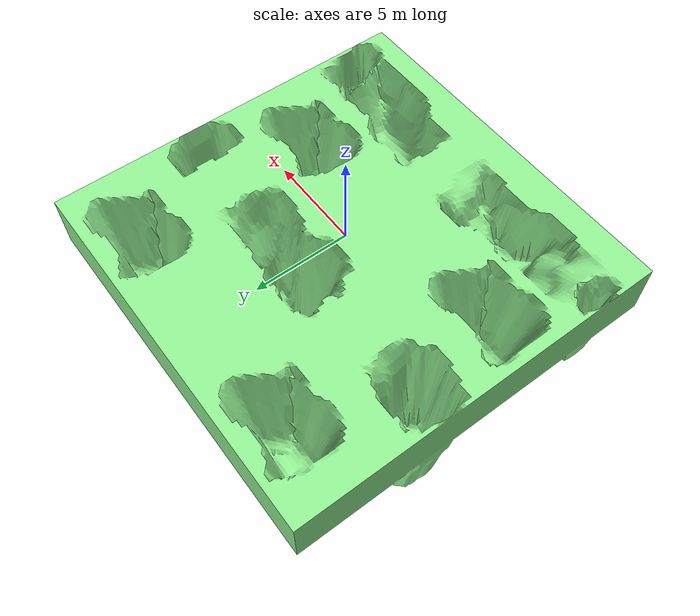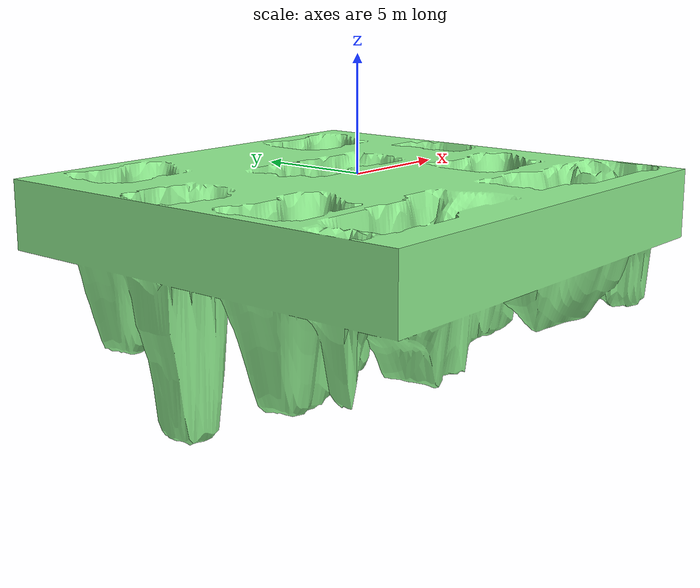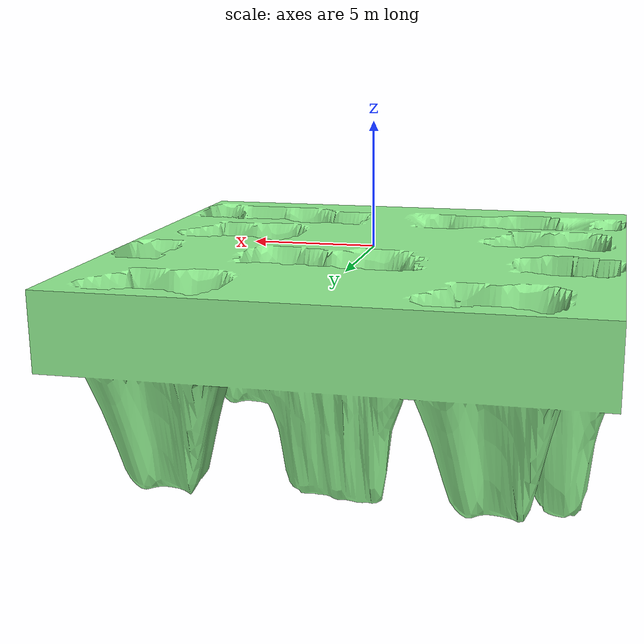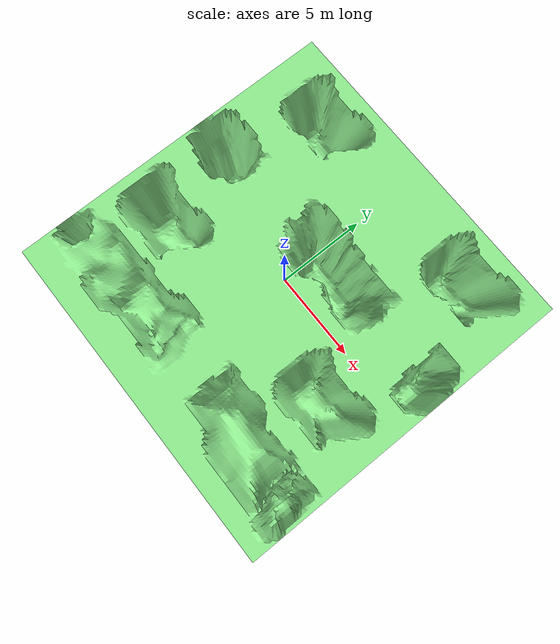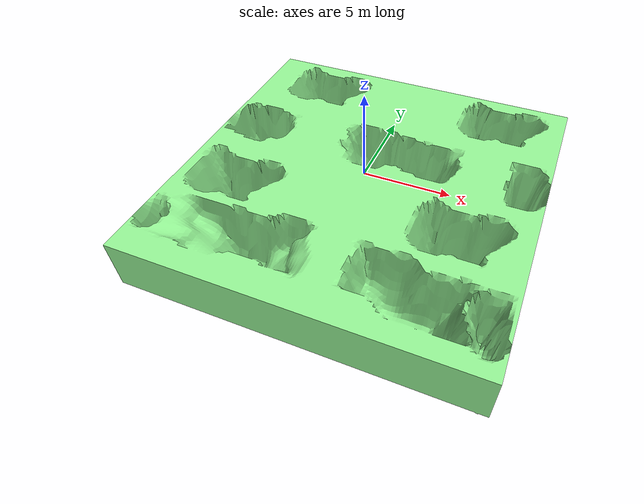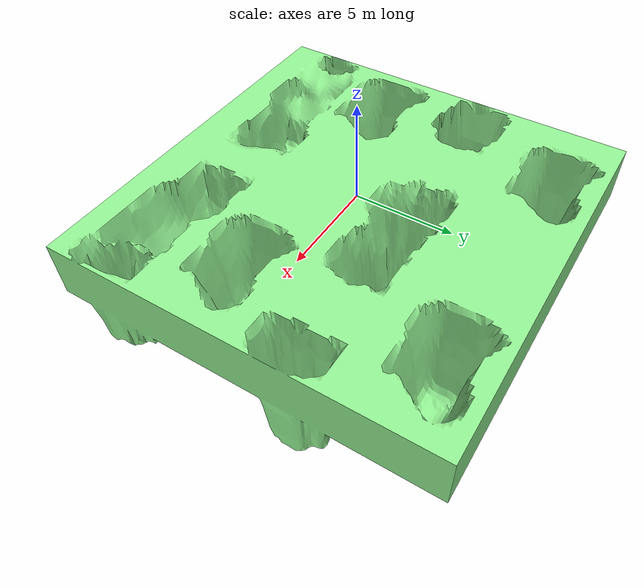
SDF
<?xml version="1.0"?>
<sdf version="1.4">
  <world name="default">
    <include>
      <uri>model://sun</uri>
    </include>
    <include>
      <uri>model://map2</uri>
    </include>
  </world>
</sdf>

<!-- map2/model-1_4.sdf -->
<sdf version="1.4">
  <model name="Map2">
    <static>true</static>
    <link name="link">
      <pose>0 0 0 0 0 0</pose>
      <collision name="collision">
        <geometry>
          <mesh>
            <uri>model://map2/meshes/map2.dae</uri>
          </mesh>
        </geometry>
      </collision>
      <visual name="visual">
        <geometry>
          <mesh>
            <uri>model://map2/meshes/map2.dae</uri>
          </mesh>
        </geometry>
        <material>
          <script>
            <uri>model://map2/materials/scripts</uri>
            <uri>model://map2/materials/textures</uri>
            <name>Map2/Image</name>
          </script>
        </material>
      </visual>
    </link>
  </model>
</sdf>
